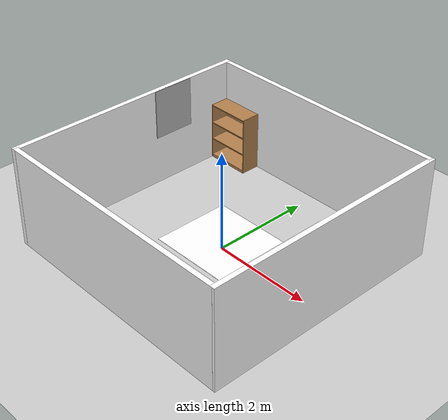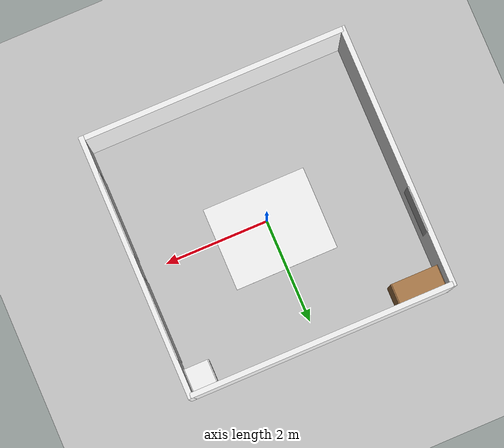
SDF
<sdf version="1.10">
 <world name="default">
  <gravity>0 0 -9.8000000000000007</gravity>
  <magnetic_field>6.0000000000000002e-06 2.3e-05 -4.1999999999999998e-05</magnetic_field>
  <atmosphere type="adiabatic"/>
  <physics type="ode">
   <max_step_size>0.001</max_step_size>
   <real_time_factor>1</real_time_factor>
   <real_time_update_rate>1000</real_time_update_rate>
  </physics>
  <plugin name="gz::sim::systems::Physics" filename="gz-sim-physics-system"/>
  <plugin name="gz::sim::systems::UserCommands" filename="gz-sim-user-commands-system"/>
  <plugin name="gz::sim::systems::SceneBroadcaster" filename="gz-sim-scene-broadcaster-system"/>
  <plugin name="gz::sim::systems::Contact" filename="gz-sim-contact-system"/>
  <plugin name="gz::sim::systems::Sensors" filename="gz-sim-sensors-system">
   <render_engine>ogre2</render_engine>
  </plugin>
  <scene>
   <ambient>0.400000006 0.400000006 0.400000006 1</ambient>
   <background>0.699999988 0.699999988 0.699999988 1</background>
   <shadows>true</shadows>
  </scene>
  <audio><device>default</device></audio>
  <spherical_coordinates>
   <surface_model>EARTH_WGS84</surface_model>
   <latitude_deg>0</latitude_deg>
   <longitude_deg>0</longitude_deg>
   <elevation>0</elevation>
   <heading_deg>0</heading_deg>
  </spherical_coordinates>
  <model name="ground_plane">
   <static>true</static>
   <link name="link">
    <collision name="collision">
     <geometry><plane><normal>0 0 1</normal><size>100 100</size></plane></geometry>
     <surface>
      <contact><collide_bitmask>65535</collide_bitmask></contact>
      <friction><ode><mu>100</mu><mu2>50</mu2></ode></friction>
     </surface>
    </collision>
    <visual name="visual">
     <cast_shadows>false</cast_shadows>
     <geometry><plane><normal>0 0 1</normal><size>50 50</size></plane></geometry>
     <material>
      <script><uri>file://media/materials/scripts/gazebo.material</uri><name>Gazebo/Grey</name></script>
     </material>
    </visual>
    <inertial>
     <mass>1</mass>
     <inertia><ixx>1</ixx><ixy>0</ixy><ixz>0</ixz><iyy>1</iyy><iyz>0</iyz><izz>1</izz></inertia>
    </inertial>
   </link>
  </model>
  <model name="Bookshelf">
   <static>true</static>
   <link name="link">
    <inertial>
     <mass>1</mass>
     <inertia><ixx>1</ixx><ixy>0</ixy><ixz>0</ixz><iyy>1</iyy><iyz>0</iyz><izz>1</izz></inertia>
    </inertial>
    <collision name="back">
     <pose>0 0.0050000000000000001 0.59999999999999998 0 0 0</pose>
     <geometry><box><size>0.90000000000000002 0.01 1.2</size></box></geometry>
    </collision>
    <visual name="visual1">
     <pose>0 0.0050000000000000001 0.59999999999999998 0 0 0</pose>
     <geometry><box><size>0.90000000000000002 0.01 1.2</size></box></geometry>
     <material>
      <diffuse>1 1 1 1</diffuse>
      <script><uri>file://media/materials/scripts/gazebo.material</uri><name>Gazebo/Wood</name></script>
      <pbr>
       <metal>
        <albedo_map>https://fuel.ignitionrobotics.org/1.0/openrobotics/models/bookshelf/3/files/bookshelf_diffuse.jpg</albedo_map>
       </metal>
      </pbr>
     </material>
    </visual>
    <collision name="left_side">
     <pose>0.45000000000000001 -0.19500000000000001 0.59999999999999998 0 0 0</pose>
     <geometry><box><size>0.02 0.40000000000000002 1.2</size></box></geometry>
    </collision>
    <visual name="visual2">
     <pose>0.45000000000000001 -0.19500000000000001 0.59999999999999998 0 0 0</pose>
     <geometry><box><size>0.02 0.40000000000000002 1.2</size></box></geometry>
     <material>
      <diffuse>1 1 1 1</diffuse>
      <script><uri>file://media/materials/scripts/gazebo.material</uri><name>Gazebo/Wood</name></script>
      <pbr>
       <metal>
        <albedo_map>https://fuel.ignitionrobotics.org/1.0/openrobotics/models/bookshelf/3/files/bookshelf_diffuse.jpg</albedo_map>
       </metal>
      </pbr>
     </material>
    </visual>
    <collision name="right_side">
     <pose>-0.45000000000000001 -0.19500000000000001 0.59999999999999998 0 0 0</pose>
     <geometry><box><size>0.02 0.40000000000000002 1.2</size></box></geometry>
    </collision>
    <visual name="visual3">
     <pose>-0.45000000000000001 -0.19500000000000001 0.59999999999999998 0 0 0</pose>
     <geometry><box><size>0.02 0.40000000000000002 1.2</size></box></geometry>
     <material>
      <diffuse>1 1 1 1</diffuse>
      <script><uri>file://media/materials/scripts/gazebo.material</uri><name>Gazebo/Wood</name></script>
      <pbr>
       <metal>
        <albedo_map>https://fuel.ignitionrobotics.org/1.0/openrobotics/models/bookshelf/3/files/bookshelf_diffuse.jpg</albedo_map>
       </metal>
      </pbr>
     </material>
    </visual>
    <collision name="bottom">
     <pose>0 -0.19500000000000001 0.029999999999999999 0 0 0</pose>
     <geometry><box><size>0.88 0.40000000000000002 0.059999999999999998</size></box></geometry>
    </collision>
    <visual name="visual4">
     <pose>0 -0.19500000000000001 0.029999999999999999 0 0 0</pose>
     <geometry><box><size>0.88 0.40000000000000002 0.059999999999999998</size></box></geometry>
     <material>
      <diffuse>1 1 1 1</diffuse>
      <script><uri>file://media/materials/scripts/gazebo.material</uri><name>Gazebo/Wood</name></script>
      <pbr>
       <metal>
        <albedo_map>https://fuel.ignitionrobotics.org/1.0/openrobotics/models/bookshelf/3/files/bookshelf_diffuse.jpg</albedo_map>
       </metal>
      </pbr>
     </material>
    </visual>
    <collision name="top">
     <pose>0 -0.19500000000000001 1.1899999999999999 0 0 0</pose>
     <geometry><box><size>0.88 0.40000000000000002 0.02</size></box></geometry>
    </collision>
    <visual name="visual5">
     <pose>0 -0.19500000000000001 1.1899999999999999 0 0 0</pose>
     <geometry><box><size>0.88 0.40000000000000002 0.02</size></box></geometry>
     <material>
      <diffuse>1 1 1 1</diffuse>
      <script><uri>file://media/materials/scripts/gazebo.material</uri><name>Gazebo/Wood</name></script>
      <pbr>
       <metal>
        <albedo_map>https://fuel.ignitionrobotics.org/1.0/openrobotics/models/bookshelf/3/files/bookshelf_diffuse.jpg</albedo_map>
       </metal>
      </pbr>
     </material>
    </visual>
    <collision name="low_shelf">
     <pose>0 -0.19500000000000001 0.42999999999999999 0 0 0</pose>
     <geometry><box><size>0.88 0.40000000000000002 0.02</size></box></geometry>
    </collision>
    <visual name="visual6">
     <pose>0 -0.19500000000000001 0.42999999999999999 0 0 0</pose>
     <geometry><box><size>0.88 0.40000000000000002 0.02</size></box></geometry>
     <material>
      <diffuse>1 1 1 1</diffuse>
      <script><uri>file://media/materials/scripts/gazebo.material</uri><name>Gazebo/Wood</name></script>
      <pbr>
       <metal>
        <albedo_map>https://fuel.ignitionrobotics.org/1.0/openrobotics/models/bookshelf/3/files/bookshelf_diffuse.jpg</albedo_map>
       </metal>
      </pbr>
     </material>
    </visual>
    <collision name="high_shelf">
     <pose>0 -0.19500000000000001 0.80000000000000004 0 0 0</pose>
     <geometry><box><size>0.88 0.40000000000000002 0.02</size></box></geometry>
    </collision>
    <visual name="visual7">
     <pose>0 -0.19500000000000001 0.80000000000000004 0 0 0</pose>
     <geometry><box><size>0.88 0.40000000000000002 0.02</size></box></geometry>
     <material>
      <diffuse>1 1 1 1</diffuse>
      <script><uri>file://media/materials/scripts/gazebo.material</uri><name>Gazebo/Wood</name></script>
      <pbr>
       <metal>
        <albedo_map>https://fuel.ignitionrobotics.org/1.0/openrobotics/models/bookshelf/3/files/bookshelf_diffuse.jpg</albedo_map>
       </metal>
      </pbr>
     </material>
    </visual>
   </link>
   <pose>-2 2.3999999999999999 0 0 0 0</pose>
  </model>
  <model name="cabinet">
   <static>true</static>
   <link name="cabinet_bottom_plate">
    <inertial>
     <pose>0 0 -1 0 0 0</pose>
     <inertia>
      <ixx>2.0499999999999998</ixx>
      <ixy>0</ixy>
      <ixz>0</ixz>
      <iyy>2.0499999999999998</iyy>
      <iyz>0</iyz>
      <izz>2.0499999999999998</izz>
     </inertia>
     <mass>25</mass>
    </inertial>
    <collision name="cabinet_bottom_plate_geom">
     <pose>0 0 0.01 0 0 0</pose>
     <geometry><box><size>0.45000000000000001 0.45000000000000001 0.02</size></box></geometry>
    </collision>
    <visual name="cabinet_bottom_plate_geom_visual">
     <pose>0 0 0.01 0 0 0</pose>
     <geometry><box><size>0.45000000000000001 0.45000000000000001 0.02</size></box></geometry>
     <material>
      <pbr><metal><albedo_map>textures/wood.png</albedo_map></metal></pbr>
      <ambient>1 1 1 1</ambient>
      <diffuse>1 1 1 1</diffuse>
      <specular>0.200000003 0.200000003 0.200000003 1</specular>
      <emissive>0 0 0 1</emissive>
     </material>
    </visual>
    <collision name="cabinet_bottom_plate_geom_cabinet_back_plate">
     <pose>0.23499999999999999 0 0.51000000000000001 0 0 0</pose>
     <geometry><box><size>0.02 0.45000000000000001 1.02</size></box></geometry>
    </collision>
    <visual name="cabinet_bottom_plate_geom_cabinet_back_plate_visual">
     <pose>0.23499999999999999 0 0.51000000000000001 0 0 0</pose>
     <geometry><box><size>0.02 0.45000000000000001 1.02</size></box></geometry>
     <material>
      <pbr><metal><albedo_map>textures/wood.png</albedo_map></metal></pbr>
      <ambient>1 1 1 1</ambient>
      <diffuse>1 1 1 1</diffuse>
      <specular>0.200000003 0.200000003 0.200000003 1</specular>
      <emissive>0 0 0 1</emissive>
     </material>
    </visual>
    <collision name="cabinet_bottom_plate_geom_cabinet_left_plate">
     <pose>0 0.23499999999999999 0.51000000000000001 0 0 0</pose>
     <geometry><box><size>0.45000000000000001 0.02 1.02</size></box></geometry>
    </collision>
    <visual name="cabinet_bottom_plate_geom_cabinet_left_plate_visual">
     <pose>0 0.23499999999999999 0.51000000000000001 0 0 0</pose>
     <geometry><box><size>0.45000000000000001 0.02 1.02</size></box></geometry>
     <material>
      <pbr><metal><albedo_map>textures/wood.png</albedo_map></metal></pbr>
      <ambient>1 1 1 1</ambient>
      <diffuse>1 1 1 1</diffuse>
      <specular>0.200000003 0.200000003 0.200000003 1</specular>
      <emissive>0 0 0 1</emissive>
     </material>
    </visual>
    <collision name="cabinet_bottom_plate_geom_cabinet_middle_plate">
     <pose>0 0 0.51000000000000001 0 0 0</pose>
     <geometry><box><size>0.45000000000000001 0.45000000000000001 0.02</size></box></geometry>
    </collision>
    <visual name="cabinet_bottom_plate_geom_cabinet_middle_plate_visual">
     <pose>0 0 0.51000000000000001 0 0 0</pose>
     <geometry><box><size>0.45000000000000001 0.45000000000000001 0.02</size></box></geometry>
     <material>
      <pbr><metal><albedo_map>textures/wood.png</albedo_map></metal></pbr>
      <ambient>1 1 1 1</ambient>
      <diffuse>1 1 1 1</diffuse>
      <specular>0.200000003 0.200000003 0.200000003 1</specular>
      <emissive>0 0 0 1</emissive>
     </material>
    </visual>
    <collision name="cabinet_bottom_plate_geom_cabinet_right_plate">
     <pose>0 -0.23499999999999999 0.51000000000000001 0 0 0</pose>
     <geometry><box><size>0.45000000000000001 0.02 1.02</size></box></geometry>
    </collision>
    <visual name="cabinet_bottom_plate_geom_cabinet_right_plate_visual">
     <pose>0 -0.23499999999999999 0.51000000000000001 0 0 0</pose>
     <geometry><box><size>0.45000000000000001 0.02 1.02</size></box></geometry>
     <material>
      <pbr><metal><albedo_map>textures/wood.png</albedo_map></metal></pbr>
      <ambient>1 1 1 1</ambient>
      <diffuse>1 1 1 1</diffuse>
      <specular>0.200000003 0.200000003 0.200000003 1</specular>
      <emissive>0 0 0 1</emissive>
     </material>
    </visual>
    <collision name="cabinet_bottom_plate_geom_cabinet_top_plate">
     <pose>0 0 1.01 0 0 0</pose>
     <geometry><box><size>0.45000000000000001 0.45000000000000001 0.02</size></box></geometry>
    </collision>
    <visual name="cabinet_bottom_plate_geom_cabinet_top_plate_visual">
     <pose>0 0 1.01 0 0 0</pose>
     <geometry><box><size>0.45000000000000001 0.45000000000000001 0.02</size></box></geometry>
     <material>
      <pbr><metal><albedo_map>textures/wood.png</albedo_map></metal></pbr>
      <ambient>1 1 1 1</ambient>
      <diffuse>1 1 1 1</diffuse>
      <specular>0.200000003 0.200000003 0.200000003 1</specular>
      <emissive>0 0 0 1</emissive>
     </material>
    </visual>
   </link>
   <pose>2.21 2.1699999999999999 0 0 0 1.5707</pose>
  </model>
  <model name="makerspet_poster">
   <link name="link">
    <visual name="visual">
     <geometry><box><size>0.029999999999999999 0.85714000000000001 1</size></box></geometry>
     <material>
      <script>
       <uri>https://fuel.ignitionrobotics.org/1.0/makerspet/models/makerspet_poster/1/files/material/script</uri>
       <uri>https://fuel.ignitionrobotics.org/1.0/makerspet/models/makerspet_poster/1/files/material/textures</uri>
       <name>Custom/makerspet</name>
      </script>
     </material>
    </visual>
    <inertial>
     <mass>1</mass>
     <inertia><ixx>1</ixx><ixy>0</ixy><ixz>0</ixz><iyy>1</iyy><iyz>0</iyz><izz>1</izz></inertia>
    </inertial>
   </link>
   <static>true</static>
   <pose>-2.4500000000000002 1 1.5 0 0 0</pose>
  </model>
  <model name="room_wall_2x5">
   <link name="link">
    <visual name="visual">
     <geometry><box><size>0.10000000000000001 5 2</size></box></geometry>
     <material>
      <pbr><metal><albedo_map>textures/bricks.png</albedo_map></metal></pbr>
      <ambient>1 1 1 1</ambient>
      <diffuse>1 1 1 1</diffuse>
      <specular>0.200000003 0.200000003 0.200000003 1</specular>
      <emissive>0 0 0 1</emissive>
     </material>
    </visual>
    <collision name="collision"><geometry><box><size>0.10000000000000001 5 2</size></box></geometry></collision>
    <inertial>
     <mass>1</mass>
     <inertia><ixx>1</ixx><ixy>0</ixy><ixz>0</ixz><iyy>1</iyy><iyz>0</iyz><izz>1</izz></inertia>
    </inertial>
   </link>
   <static>true</static>
   <pose>-2.5 0 1 0 0 0</pose>
  </model>
  <model name="room_wall_2x5_0">
   <link name="link">
    <visual name="visual">
     <geometry><box><size>0.10000000000000001 5 2</size></box></geometry>
     <material>
      <pbr><metal><albedo_map>textures/bricks.png</albedo_map></metal></pbr>
      <ambient>1 1 1 1</ambient>
      <diffuse>1 1 1 1</diffuse>
      <specular>0.200000003 0.200000003 0.200000003 1</specular>
      <emissive>0 0 0 1</emissive>
     </material>
    </visual>
    <collision name="collision"><geometry><box><size>0.10000000000000001 5 2</size></box></geometry></collision>
    <inertial>
     <mass>1</mass>
     <inertia><ixx>1</ixx><ixy>0</ixy><ixz>0</ixz><iyy>1</iyy><iyz>0</iyz><izz>1</izz></inertia>
    </inertial>
   </link>
   <static>true</static>
   <pose>2.5 0 1 0 0 0</pose>
  </model>
  <model name="room_wall_2x5_1">
   <link name="link">
    <visual name="visual">
     <geometry><box><size>0.10000000000000001 5 2</size></box></geometry>
     <material>
      <pbr><metal><albedo_map>textures/bricks.png</albedo_map></metal></pbr>
      <ambient>1 1 1 1</ambient>
      <diffuse>1 1 1 1</diffuse>
      <specular>0.200000003 0.200000003 0.200000003 1</specular>
      <emissive>0 0 0 1</emissive>
     </material>
    </visual>
    <collision name="collision"><geometry><box><size>0.10000000000000001 5 2</size></box></geometry></collision>
    <inertial>
     <mass>1</mass>
     <inertia><ixx>1</ixx><ixy>0</ixy><ixz>0</ixz><iyy>1</iyy><iyz>0</iyz><izz>1</izz></inertia>
    </inertial>
   </link>
   <static>true</static>
   <pose>0 -2.4500000000000002 1 0 0 1.5707</pose>
  </model>
  <model name="room_wall_2x5_2">
   <link name="link">
    <visual name="visual">
     <geometry><box><size>0.10000000000000001 5 2</size></box></geometry>
     <material>
      <pbr><metal><albedo_map>textures/bricks.png</albedo_map></metal></pbr>
      <ambient>1 1 1 1</ambient>
      <diffuse>1 1 1 1</diffuse>
      <specular>0.200000003 0.200000003 0.200000003 1</specular>
      <emissive>0 0 0 1</emissive>
     </material>
    </visual>
    <collision name="collision"><geometry><box><size>0.10000000000000001 5 2</size></box></geometry></collision>
    <inertial>
     <mass>1</mass>
     <inertia><ixx>1</ixx><ixy>0</ixy><ixz>0</ixz><iyy>1</iyy><iyz>0</iyz><izz>1</izz></inertia>
    </inertial>
   </link>
   <static>true</static>
   <pose>0 2.4500000000000002 1 0 0 1.5707</pose>
  </model>
  <model name="rug_ivory_2m_0">
   <link name="link">
    <visual name="visual">
     <geometry><box><size>1.6000000000000001 2 0.0050000000000000001</size></box></geometry>
     <material>
      <pbr><metal><albedo_map>textures/rug.png</albedo_map></metal></pbr>
      <ambient>1 1 1 1</ambient>
      <diffuse>1 1 1 1</diffuse>
      <specular>0.200000003 0.200000003 0.200000003 1</specular>
      <emissive>0 0 0 1</emissive>
     </material>
    </visual>
    <inertial>
     <mass>1</mass>
     <inertia><ixx>1</ixx><ixy>0</ixy><ixz>0</ixz><iyy>1</iyy><iyz>0</iyz><izz>1</izz></inertia>
    </inertial>
   </link>
   <static>true</static>
   <pose>0 0.14999999999999999 0 0 0 1.5707</pose>
  </model>
  <model name="window_curtains">
   <link name="link">
    <visual name="visual">
     <geometry><box><size>0.02 1.5676000000000001 2</size></box></geometry>
     <material>
      <pbr><metal><albedo_map>textures/curtains.png</albedo_map></metal></pbr>
      <ambient>1 1 1 1</ambient>
      <diffuse>1 1 1 1</diffuse>
      <specular>0.200000003 0.200000003 0.200000003 1</specular>
      <emissive>0 0 0 1</emissive>
     </material>
    </visual>
    <inertial>
     <mass>1</mass>
     <inertia><ixx>1</ixx><ixy>0</ixy><ixz>0</ixz><iyy>1</iyy><iyz>0</iyz><izz>1</izz></inertia>
    </inertial>
   </link>
   <static>true</static>
   <pose>2.4500000000000002 1 1 0 0 0</pose>
  </model>
  <model name="window_curtains_0">
   <link name="link">
    <visual name="visual">
     <geometry><box><size>0.02 1.5676000000000001 2</size></box></geometry>
     <material>
      <pbr><metal><albedo_map>textures/curtains.png</albedo_map></metal></pbr>
      <ambient>1 1 1 1</ambient>
      <diffuse>1 1 1 1</diffuse>
      <specular>0.200000003 0.200000003 0.200000003 1</specular>
      <emissive>0 0 0 1</emissive>
     </material>
    </visual>
    <inertial>
     <mass>1</mass>
     <inertia><ixx>1</ixx><ixy>0</ixy><ixz>0</ixz><iyy>1</iyy><iyz>0</iyz><izz>1</izz></inertia>
    </inertial>
   </link>
   <static>true</static>
   <pose>2.4500000000000002 -1 1 0 0 0</pose>
  </model>
  <light name="sun" type="directional">
   <pose>0 0 10 0 0 0</pose>
   <intensity>1</intensity>
   <direction>-0.5 0.10000000000000001 -0.90000000000000002</direction>
   <diffuse>0.800000012 0.800000012 0.800000012 1</diffuse>
   <specular>0.200000003 0.200000003 0.200000003 1</specular>
   <attenuation>
    <range>1000</range>
    <linear>0.0099999997764825821</linear>
    <constant>0.89999997615814209</constant>
    <quadratic>0.0010000000474974513</quadratic>
   </attenuation>
   <spot><inner_angle>0</inner_angle><outer_angle>0</outer_angle><falloff>0</falloff></spot>
  </light>
  <light name="pointlight" type="point">
   <pose>0.308083 2.7406700000000002 2 0 0 0</pose>
   <cast_shadows>false</cast_shadows>
   <intensity>3</intensity>
   <direction>0 0 -1</direction>
   <diffuse>0.5 0.5 0.5 1</diffuse>
   <specular>0.5 0.5 0.5 1</specular>
   <attenuation>
    <range>4</range>
    <linear>0.5</linear>
    <constant>0.20000000298023224</constant>
    <quadratic>0.0099999997764825821</quadratic>
   </attenuation>
   <spot><inner_angle>0</inner_angle><outer_angle>0</outer_angle><falloff>0</falloff></spot>
  </light>
  <light name="pointlight_0" type="point">
   <pose>-2.8916400000000002 2.1654499999999999 2 0 0 0</pose>
   <cast_shadows>false</cast_shadows>
   <intensity>1</intensity>
   <direction>0 0 -1</direction>
   <diffuse>0.5 0.5 0.5 1</diffuse>
   <specular>0.5 0.5 0.5 1</specular>
   <attenuation>
    <range>4</range>
    <linear>0.5</linear>
    <constant>0.20000000298023224</constant>
    <quadratic>0.0099999997764825821</quadratic>
   </attenuation>
   <spot><inner_angle>0</inner_angle><outer_angle>0</outer_angle><falloff>0</falloff></spot>
  </light>
  <light name="pointlight_1" type="point">
   <pose>-0.70209900000000003 -1.6697900000000001 2 0 0 0</pose>
   <cast_shadows>false</cast_shadows>
   <intensity>1</intensity>
   <direction>0 0 -1</direction>
   <diffuse>0.5 0.5 0.5 1</diffuse>
   <specular>0.5 0.5 0.5 1</specular>
   <attenuation>
    <range>4</range>
    <linear>0.5</linear>
    <constant>0.20000000298023224</constant>
    <quadratic>0.0099999997764825821</quadratic>
   </attenuation>
   <spot><inner_angle>0</inner_angle><outer_angle>0</outer_angle><falloff>0</falloff></spot>
  </light>
 </world>
</sdf>
